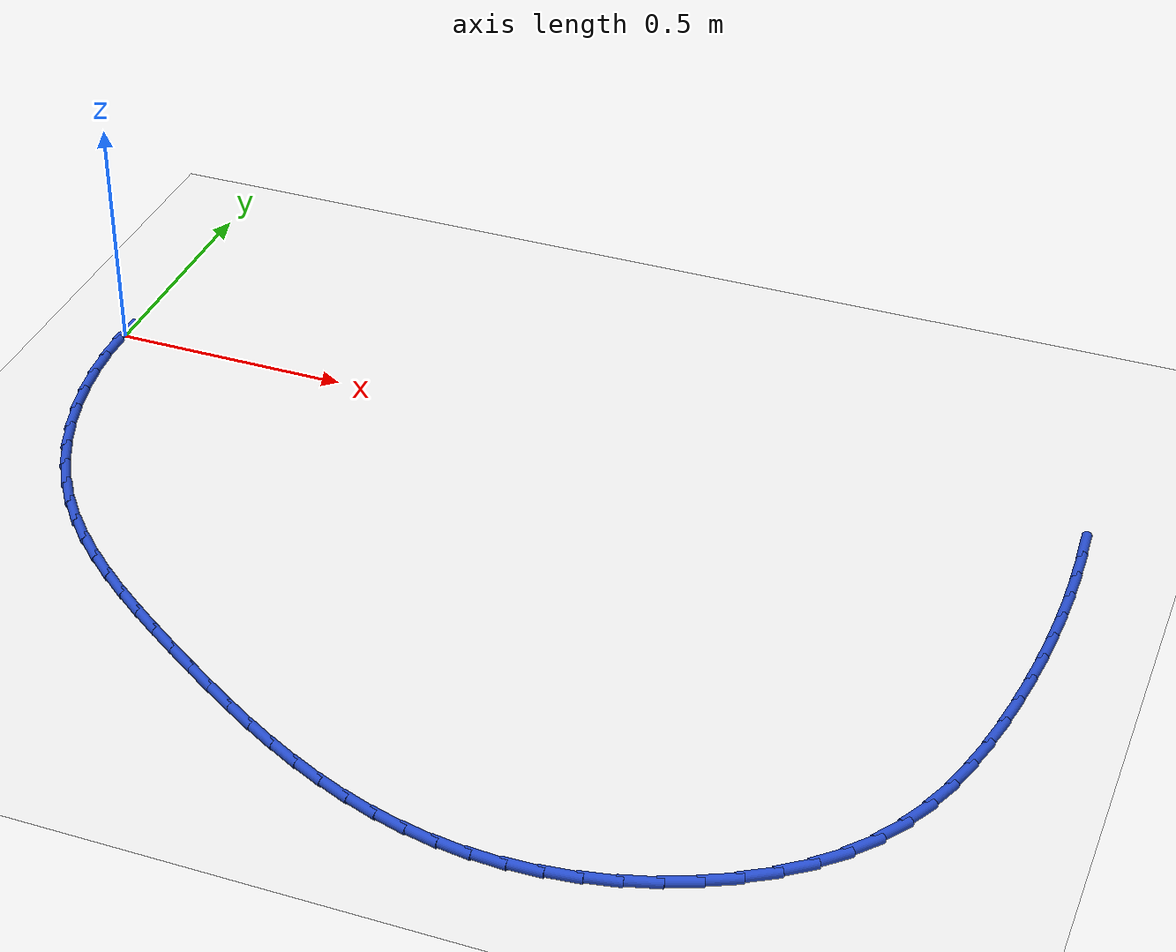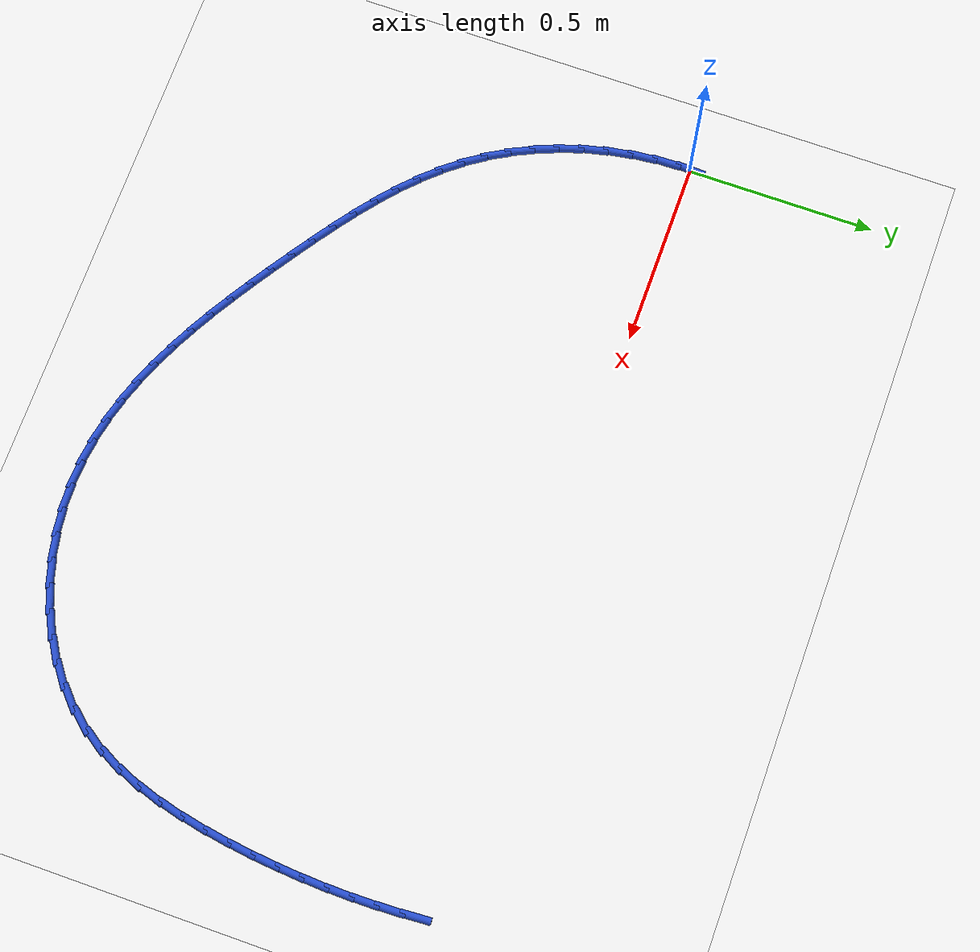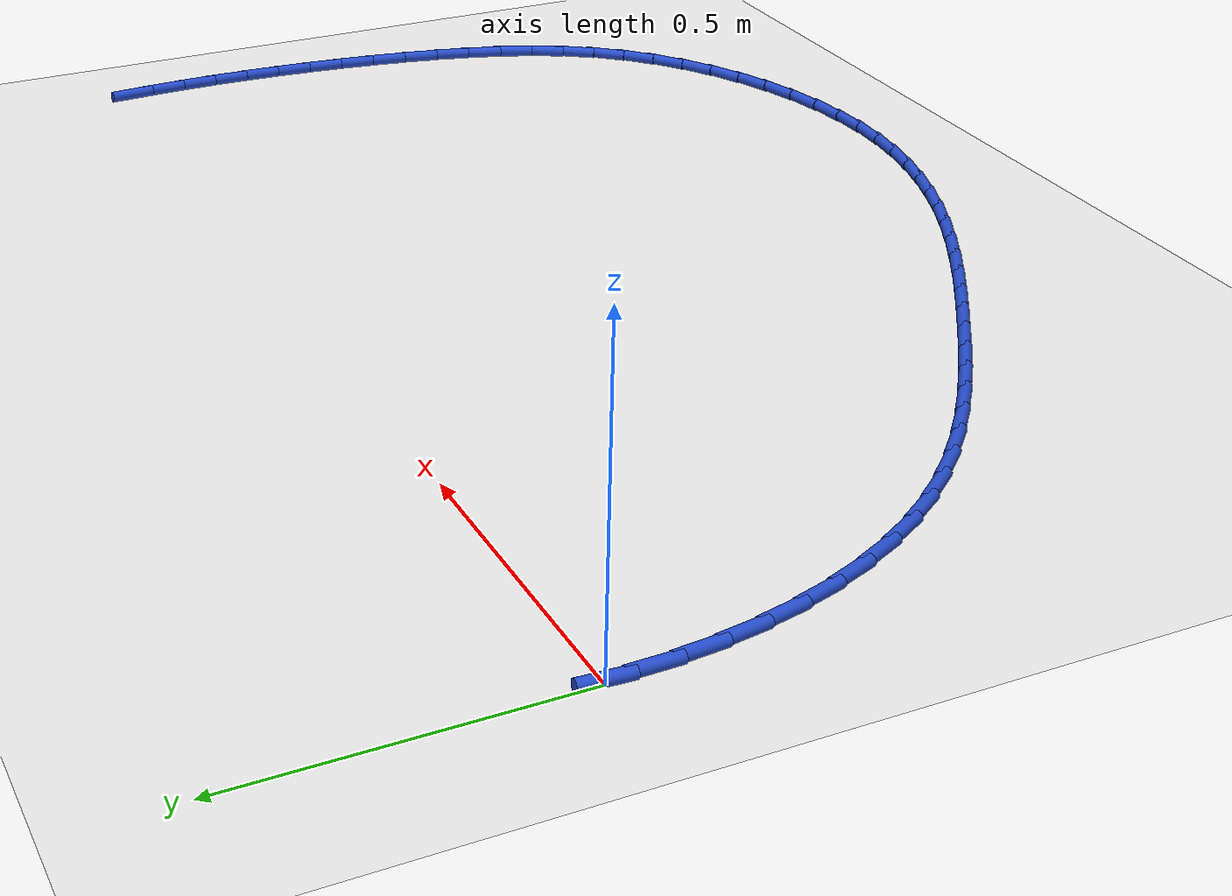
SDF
<sdf version="1.6">
 <world name="default">
  <model name="ground_plane">
   <static>1</static>
   <link name="link">
    <collision name="collision">
     <geometry><plane><normal>0 0 1</normal><size>100 100</size></plane></geometry>
     <surface><friction><ode><mu>100</mu><mu2>50</mu2></ode></friction></surface>
    </collision>
    <visual name="visual">
     <cast_shadows>0</cast_shadows>
     <geometry><plane><normal>0 0 1</normal><size>100 100</size></plane></geometry>
     <material>
      <script><uri>file://media/materials/scripts/gazebo.material</uri><name>Gazebo/WhiteGlow</name></script>
     </material>
    </visual>
   </link>
  </model>
  <model name="line">
   <link name="link_0">
    <pose>5.204170427930421e-17 9.71445146547012e-17 0.01 0 1.57 1.5208950356106852</pose>
    <collision name="collision">
     <geometry><cylinder><radius>0.01</radius><length>0.08</length></cylinder></geometry>
    </collision>
    <visual name="visual">
     <material>
      <script><name>Gazebo/Blue</name><uri>file://media/materials/scripts/gazebo.material</uri></script>
     </material>
     <geometry><cylinder><radius>0.01</radius><length>0.08</length></cylinder></geometry>
    </visual>
   </link>
   <link name="link_55">
    <pose>2.0816488202524788 -0.015220725173674725 0.01 0 1.57 -1.5101368842835152</pose>
    <collision name="collision">
     <geometry><cylinder><radius>0.01</radius><length>0.08</length></cylinder></geometry>
    </collision>
    <visual name="visual">
     <material>
      <script><name>Gazebo/Blue</name><uri>file://media/materials/scripts/gazebo.material</uri></script>
     </material>
     <geometry><cylinder><radius>0.01</radius><length>0.08</length></cylinder></geometry>
    </visual>
   </link>
   <link name="link_56">
    <pose>2.0855438862087197 -0.07935397856693627 0.01 0 1.57 -1.5394694546921008</pose>
    <collision name="collision">
     <geometry><cylinder><radius>0.01</radius><length>0.08</length></cylinder></geometry>
    </collision>
    <visual name="visual">
     <material>
      <script><name>Gazebo/Blue</name><uri>file://media/materials/scripts/gazebo.material</uri></script>
     </material>
     <geometry><cylinder><radius>0.01</radius><length>0.08</length></cylinder></geometry>
    </visual>
   </link>
   <link name="link_57">
    <pose>2.087562389656337 -0.14376650900578747 0.01 0 1.57 -1.5686212378386521</pose>
    <collision name="collision">
     <geometry><cylinder><radius>0.01</radius><length>0.08</length></cylinder></geometry>
    </collision>
    <visual name="visual">
     <material>
      <script><name>Gazebo/Blue</name><uri>file://media/materials/scripts/gazebo.material</uri></script>
     </material>
     <geometry><cylinder><radius>0.01</radius><length>0.08</length></cylinder></geometry>
    </visual>
   </link>
   <link name="link_58">
    <pose>2.0877030223593205 -0.20842247666229008 0.01 0 1.57 1.5439996170005028</pose>
    <collision name="collision">
     <geometry><cylinder><radius>0.01</radius><length>0.08</length></cylinder></geometry>
    </collision>
    <visual name="visual">
     <material>
      <script><name>Gazebo/Blue</name><uri>file://media/materials/scripts/gazebo.material</uri></script>
     </material>
     <geometry><cylinder><radius>0.01</radius><length>0.08</length></cylinder></geometry>
    </visual>
   </link>
   <link name="link_59">
    <pose>2.08596447608166 -0.2732860417085088 0.01 0 1.57 1.5152064612364988</pose>
    <collision name="collision">
     <geometry><cylinder><radius>0.01</radius><length>0.08</length></cylinder></geometry>
    </collision>
    <visual name="visual">
     <material>
      <script><name>Gazebo/Blue</name><uri>file://media/materials/scripts/gazebo.material</uri></script>
     </material>
     <geometry><cylinder><radius>0.01</radius><length>0.08</length></cylinder></geometry>
    </visual>
   </link>
   <link name="link_60">
    <pose>2.082345442587344 -0.33832136431650517 0.01 0 1.57 1.48659014586099</pose>
    <collision name="collision">
     <geometry><cylinder><radius>0.01</radius><length>0.08</length></cylinder></geometry>
    </collision>
    <visual name="visual">
     <material>
      <script><name>Gazebo/Blue</name><uri>file://media/materials/scripts/gazebo.material</uri></script>
     </material>
     <geometry><cylinder><radius>0.01</radius><length>0.08</length></cylinder></geometry>
    </visual>
   </link>
   <link name="link_61">
    <pose>2.0768446136403638 -0.40349260465834436 0.01 0 1.57 1.4581484826261615</pose>
    <collision name="collision">
     <geometry><cylinder><radius>0.01</radius><length>0.08</length></cylinder></geometry>
    </collision>
    <visual name="visual">
     <material>
      <script><name>Gazebo/Blue</name><uri>file://media/materials/scripts/gazebo.material</uri></script>
     </material>
     <geometry><cylinder><radius>0.01</radius><length>0.08</length></cylinder></geometry>
    </visual>
   </link>
   <link name="link_62">
    <pose>2.0694606810047076 -0.46876392290608776 0.01 0 1.57 1.4298776321124267</pose>
    <collision name="collision">
     <geometry><cylinder><radius>0.01</radius><length>0.08</length></cylinder></geometry>
    </collision>
    <visual name="visual">
     <material>
      <script><name>Gazebo/Blue</name><uri>file://media/materials/scripts/gazebo.material</uri></script>
     </material>
     <geometry><cylinder><radius>0.01</radius><length>0.08</length></cylinder></geometry>
    </visual>
   </link>
   <link name="link_63">
    <pose>2.060192257811258 -0.5340994045768019 0.01 0 1.57 1.3994507616390732</pose>
    <collision name="collision">
     <geometry><cylinder><radius>0.01</radius><length>0.08</length></cylinder></geometry>
    </collision>
    <visual name="visual">
     <material>
      <script><name>Gazebo/Blue</name><uri>file://media/materials/scripts/gazebo.material</uri></script>
     </material>
     <geometry><cylinder><radius>0.01</radius><length>0.08</length></cylinder></geometry>
    </visual>
   </link>
   <link name="link_64">
    <pose>2.048903631864892 -0.5993356054809035 0.01 0 1.57 1.3594880709356443</pose>
    <collision name="collision">
     <geometry><cylinder><radius>0.01</radius><length>0.08</length></cylinder></geometry>
    </collision>
    <visual name="visual">
     <material>
      <script><name>Gazebo/Blue</name><uri>file://media/materials/scripts/gazebo.material</uri></script>
     </material>
     <geometry><cylinder><radius>0.01</radius><length>0.08</length></cylinder></geometry>
    </visual>
   </link>
   <link name="link_65">
    <pose>2.0350495453526554 -0.6639202550320885 0.01 0 1.57 1.3078253154363078</pose>
    <collision name="collision">
     <geometry><cylinder><radius>0.01</radius><length>0.08</length></cylinder></geometry>
    </collision>
    <visual name="visual">
     <material>
      <script><name>Gazebo/Blue</name><uri>file://media/materials/scripts/gazebo.material</uri></script>
     </material>
     <geometry><cylinder><radius>0.01</radius><length>0.08</length></cylinder></geometry>
    </visual>
   </link>
   <link name="link_66">
    <pose>2.018006966656782 -0.7272272434745742 0.01 0 1.57 1.2433934933358017</pose>
    <collision name="collision">
     <geometry><cylinder><radius>0.01</radius><length>0.08</length></cylinder></geometry>
    </collision>
    <visual name="visual">
     <material>
      <script><name>Gazebo/Blue</name><uri>file://media/materials/scripts/gazebo.material</uri></script>
     </material>
     <geometry><cylinder><radius>0.01</radius><length>0.08</length></cylinder></geometry>
    </visual>
   </link>
   <link name="link_67">
    <pose>1.997152864159507 -0.788630461052576 0.01 0 1.57 1.1650836154721007</pose>
    <collision name="collision">
     <geometry><cylinder><radius>0.01</radius><length>0.08</length></cylinder></geometry>
    </collision>
    <visual name="visual">
     <material>
      <script><name>Gazebo/Blue</name><uri>file://media/materials/scripts/gazebo.material</uri></script>
     </material>
     <geometry><cylinder><radius>0.01</radius><length>0.08</length></cylinder></geometry>
    </visual>
   </link>
   <link name="link_68">
    <pose>1.9718642062430654 -0.8475037980103112 0.01 0 1.57 1.0720727556856995</pose>
    <collision name="collision">
     <geometry><cylinder><radius>0.01</radius><length>0.08</length></cylinder></geometry>
    </collision>
    <visual name="visual">
     <material>
      <script><name>Gazebo/Blue</name><uri>file://media/materials/scripts/gazebo.material</uri></script>
     </material>
     <geometry><cylinder><radius>0.01</radius><length>0.08</length></cylinder></geometry>
    </visual>
   </link>
   <link name="link_69">
    <pose>1.941517961289692 -0.9032211445919953 0.01 0 1.57 0.9643190950408816</pose>
    <collision name="collision">
     <geometry><cylinder><radius>0.01</radius><length>0.08</length></cylinder></geometry>
    </collision>
    <visual name="visual">
     <material>
      <script><name>Gazebo/Blue</name><uri>file://media/materials/scripts/gazebo.material</uri></script>
     </material>
     <geometry><cylinder><radius>0.01</radius><length>0.08</length></cylinder></geometry>
    </visual>
   </link>
   <link name="link_70">
    <pose>1.9054910976816215 -0.9551563910418464 0.01 0 1.57 0.8453978310898306</pose>
    <collision name="collision">
     <geometry><cylinder><radius>0.01</radius><length>0.08</length></cylinder></geometry>
    </collision>
    <visual name="visual">
     <material>
      <script><name>Gazebo/Blue</name><uri>file://media/materials/scripts/gazebo.material</uri></script>
     </material>
     <geometry><cylinder><radius>0.01</radius><length>0.08</length></cylinder></geometry>
    </visual>
   </link>
   <link name="link_71">
    <pose>1.863305237323063 -1.0027345339904825 0.01 0 1.57 0.7311206717765012</pose>
    <collision name="collision">
     <geometry><cylinder><radius>0.01</radius><length>0.08</length></cylinder></geometry>
    </collision>
    <visual name="visual">
     <material>
      <script><name>Gazebo/Blue</name><uri>file://media/materials/scripts/gazebo.material</uri></script>
     </material>
     <geometry><cylinder><radius>0.01</radius><length>0.08</length></cylinder></geometry>
    </visual>
   </link>
   <link name="link_72">
    <pose>1.8153981196389575 -1.0457042362701234 0.01 0 1.57 0.6264674265452219</pose>
    <collision name="collision">
     <geometry><cylinder><radius>0.01</radius><length>0.08</length></cylinder></geometry>
    </collision>
    <visual name="visual">
     <material>
      <script><name>Gazebo/Blue</name><uri>file://media/materials/scripts/gazebo.material</uri></script>
     </material>
     <geometry><cylinder><radius>0.01</radius><length>0.08</length></cylinder></geometry>
    </visual>
   </link>
   <link name="link_73">
    <pose>1.762565045273888 -1.0839404878262449 0.01 0 1.57 0.5300331884172826</pose>
    <collision name="collision">
     <geometry><cylinder><radius>0.01</radius><length>0.08</length></cylinder></geometry>
    </collision>
    <visual name="visual">
     <material>
      <script><name>Gazebo/Blue</name><uri>file://media/materials/scripts/gazebo.material</uri></script>
     </material>
     <geometry><cylinder><radius>0.01</radius><length>0.08</length></cylinder></geometry>
    </visual>
   </link>
   <link name="link_74">
    <pose>1.7056021320756767 -1.1173185673239094 0.01 0 1.57 0.44011816907898693</pose>
    <collision name="collision">
     <geometry><cylinder><radius>0.01</radius><length>0.08</length></cylinder></geometry>
    </collision>
    <visual name="visual">
     <material>
      <script><name>Gazebo/Blue</name><uri>file://media/materials/scripts/gazebo.material</uri></script>
     </material>
     <geometry><cylinder><radius>0.01</radius><length>0.08</length></cylinder></geometry>
    </visual>
   </link>
   <link name="link_75">
    <pose>1.6453054978921482 -1.145713753428177 0.01 0 1.57 0.3549244007963715</pose>
    <collision name="collision">
     <geometry><cylinder><radius>0.01</radius><length>0.08</length></cylinder></geometry>
    </collision>
    <visual name="visual">
     <material>
      <script><name>Gazebo/Blue</name><uri>file://media/materials/scripts/gazebo.material</uri></script>
     </material>
     <geometry><cylinder><radius>0.01</radius><length>0.08</length></cylinder></geometry>
    </visual>
   </link>
   <link name="link_76">
    <pose>1.5824712605711242 -1.1690013248041082 0.01 0 1.57 0.27263578087046275</pose>
    <collision name="collision">
     <geometry><cylinder><radius>0.01</radius><length>0.08</length></cylinder></geometry>
    </collision>
    <visual name="visual">
     <material>
      <script><name>Gazebo/Blue</name><uri>file://media/materials/scripts/gazebo.material</uri></script>
     </material>
     <geometry><cylinder><radius>0.01</radius><length>0.08</length></cylinder></geometry>
    </visual>
   </link>
   <link name="link_77">
    <pose>1.5178955379604298 -1.1870565601167642 0.01 0 1.57 0.1914297803903629</pose>
    <collision name="collision">
     <geometry><cylinder><radius>0.01</radius><length>0.08</length></cylinder></geometry>
    </collision>
    <visual name="visual">
     <material>
      <script><name>Gazebo/Blue</name><uri>file://media/materials/scripts/gazebo.material</uri></script>
     </material>
     <geometry><cylinder><radius>0.01</radius><length>0.08</length></cylinder></geometry>
    </visual>
   </link>
   <link name="link_78">
    <pose>1.4523744479078864 -1.1997547380312057 0.01 0 1.57 0.10944911867399092</pose>
    <collision name="collision">
     <geometry><cylinder><radius>0.01</radius><length>0.08</length></cylinder></geometry>
    </collision>
    <visual name="visual">
     <material>
      <script><name>Gazebo/Blue</name><uri>file://media/materials/scripts/gazebo.material</uri></script>
     </material>
     <geometry><cylinder><radius>0.01</radius><length>0.08</length></cylinder></geometry>
    </visual>
   </link>
   <link name="link_79">
    <pose>1.3867041082613192 -1.2069711372124932 0.01 0 1.57 0.02495329615455991</pose>
    <collision name="collision">
     <geometry><cylinder><radius>0.01</radius><length>0.08</length></cylinder></geometry>
    </collision>
    <visual name="visual">
     <material>
      <script><name>Gazebo/Blue</name><uri>file://media/materials/scripts/gazebo.material</uri></script>
     </material>
     <geometry><cylinder><radius>0.01</radius><length>0.08</length></cylinder></geometry>
    </visual>
   </link>
   <link name="link_80">
    <pose>1.321659845202949 -1.2085945429327822 0.01 0 1.57 -0.05939845809994278</pose>
    <collision name="collision">
     <geometry><cylinder><radius>0.01</radius><length>0.08</length></cylinder></geometry>
    </collision>
    <visual name="visual">
     <material>
      <script><name>Gazebo/Blue</name><uri>file://media/materials/scripts/gazebo.material</uri></script>
     </material>
     <geometry><cylinder><radius>0.01</radius><length>0.08</length></cylinder></geometry>
    </visual>
   </link>
   <link name="link_81">
    <pose>1.2575994571866378 -1.2047849733267622 0.01 0 1.57 -0.13904663643183146</pose>
    <collision name="collision">
     <geometry><cylinder><radius>0.01</radius><length>0.08</length></cylinder></geometry>
    </collision>
    <visual name="visual">
     <material>
      <script><name>Gazebo/Blue</name><uri>file://media/materials/scripts/gazebo.material</uri></script>
     </material>
     <geometry><cylinder><radius>0.01</radius><length>0.08</length></cylinder></geometry>
    </visual>
   </link>
   <link name="link_82">
    <pose>1.194494378954918 -1.1959534347349001 0.01 0 1.57 -0.21272239350099098</pose>
    <collision name="collision">
     <geometry><cylinder><radius>0.01</radius><length>0.08</length></cylinder></geometry>
    </collision>
    <visual name="visual">
     <material>
      <script><name>Gazebo/Blue</name><uri>file://media/materials/scripts/gazebo.material</uri></script>
     </material>
     <geometry><cylinder><radius>0.01</radius><length>0.08</length></cylinder></geometry>
    </visual>
   </link>
   <link name="link_83">
    <pose>1.1323014981476116 -1.1825203835342495 0.01 0 1.57 -0.2797015264424298</pose>
    <collision name="collision">
     <geometry><cylinder><radius>0.01</radius><length>0.08</length></cylinder></geometry>
    </collision>
    <visual name="visual">
     <material>
      <script><name>Gazebo/Blue</name><uri>file://media/materials/scripts/gazebo.material</uri></script>
     </material>
     <geometry><cylinder><radius>0.01</radius><length>0.08</length></cylinder></geometry>
    </visual>
   </link>
   <link name="link_84">
    <pose>1.0709777024045426 -1.1649062761018656 0.01 0 1.57 -0.3396237996455506</pose>
    <collision name="collision">
     <geometry><cylinder><radius>0.01</radius><length>0.08</length></cylinder></geometry>
    </collision>
    <visual name="visual">
     <material>
      <script><name>Gazebo/Blue</name><uri>file://media/materials/scripts/gazebo.material</uri></script>
     </material>
     <geometry><cylinder><radius>0.01</radius><length>0.08</length></cylinder></geometry>
    </visual>
   </link>
   <link name="link_85">
    <pose>1.0104798793655327 -1.1435315688148024 0.01 0 1.57 -0.3924146494319933</pose>
    <collision name="collision">
     <geometry><cylinder><radius>0.01</radius><length>0.08</length></cylinder></geometry>
    </collision>
    <visual name="visual">
     <material>
      <script><name>Gazebo/Blue</name><uri>file://media/materials/scripts/gazebo.material</uri></script>
     </material>
     <geometry><cylinder><radius>0.01</radius><length>0.08</length></cylinder></geometry>
    </visual>
   </link>
   <link name="link_86">
    <pose>0.9507649166704055 -1.118816718050115 0.01 0 1.57 -0.4381962264169241</pose>
    <collision name="collision">
     <geometry><cylinder><radius>0.01</radius><length>0.08</length></cylinder></geometry>
    </collision>
    <visual name="visual">
     <material>
      <script><name>Gazebo/Blue</name><uri>file://media/materials/scripts/gazebo.material</uri></script>
     </material>
     <geometry><cylinder><radius>0.01</radius><length>0.08</length></cylinder></geometry>
    </visual>
   </link>
   <link name="link_87">
    <pose>0.891789701958983 -1.0911821801848571 0.01 0 1.57 -0.47720561331829947</pose>
    <collision name="collision">
     <geometry><cylinder><radius>0.01</radius><length>0.08</length></cylinder></geometry>
    </collision>
    <visual name="visual">
     <material>
      <script><name>Gazebo/Blue</name><uri>file://media/materials/scripts/gazebo.material</uri></script>
     </material>
     <geometry><cylinder><radius>0.01</radius><length>0.08</length></cylinder></geometry>
    </visual>
   </link>
   <link name="link_88">
    <pose>0.833511122871089 -1.0610484115960839 0.01 0 1.57 -0.5097285384693562</pose>
    <collision name="collision">
     <geometry><cylinder><radius>0.01</radius><length>0.08</length></cylinder></geometry>
    </collision>
    <visual name="visual">
     <material>
      <script><name>Gazebo/Blue</name><uri>file://media/materials/scripts/gazebo.material</uri></script>
     </material>
     <geometry><cylinder><radius>0.01</radius><length>0.08</length></cylinder></geometry>
    </visual>
   </link>
   <link name="link_89">
    <pose>0.7758860670465448 -1.0288358686608494 0.01 0 1.57 -0.536050010995693</pose>
    <collision name="collision">
     <geometry><cylinder><radius>0.01</radius><length>0.08</length></cylinder></geometry>
    </collision>
    <visual name="visual">
     <material>
      <script><name>Gazebo/Blue</name><uri>file://media/materials/scripts/gazebo.material</uri></script>
     </material>
     <geometry><cylinder><radius>0.01</radius><length>0.08</length></cylinder></geometry>
    </visual>
   </link>
   <link name="link_90">
    <pose>0.7188714221251753 -0.9949650077562091 0.01 0 1.57 -0.5564195976568871</pose>
    <collision name="collision">
     <geometry><cylinder><radius>0.01</radius><length>0.08</length></cylinder></geometry>
    </collision>
    <visual name="visual">
     <material>
      <script><name>Gazebo/Blue</name><uri>file://media/materials/scripts/gazebo.material</uri></script>
     </material>
     <geometry><cylinder><radius>0.01</radius><length>0.08</length></cylinder></geometry>
    </visual>
   </link>
   <link name="link_91">
    <pose>0.6624240757468007 -0.9598562852592156 0.01 0 1.57 -0.5710277389361428</pose>
    <collision name="collision">
     <geometry><cylinder><radius>0.01</radius><length>0.08</length></cylinder></geometry>
    </collision>
    <visual name="visual">
     <material>
      <script><name>Gazebo/Blue</name><uri>file://media/materials/scripts/gazebo.material</uri></script>
     </material>
     <geometry><cylinder><radius>0.01</radius><length>0.08</length></cylinder></geometry>
    </visual>
   </link>
   <link name="link_92">
    <pose>0.6065009155512461 -0.9239301575469256 0.01 0 1.57 -0.580485274531685</pose>
    <collision name="collision">
     <geometry><cylinder><radius>0.01</radius><length>0.08</length></cylinder></geometry>
    </collision>
    <visual name="visual">
     <material>
      <script><name>Gazebo/Blue</name><uri>file://media/materials/scripts/gazebo.material</uri></script>
     </material>
     <geometry><cylinder><radius>0.01</radius><length>0.08</length></cylinder></geometry>
    </visual>
   </link>
   <link name="link_93">
    <pose>0.5510749688939215 -0.8875783716891588 0.01 0 1.57 -0.5921159011505723</pose>
    <collision name="collision">
     <geometry><cylinder><radius>0.01</radius><length>0.08</length></cylinder></geometry>
    </collision>
    <visual name="visual">
     <material>
      <script><name>Gazebo/Blue</name><uri>file://media/materials/scripts/gazebo.material</uri></script>
     </material>
     <geometry><cylinder><radius>0.01</radius><length>0.08</length></cylinder></geometry>
    </visual>
   </link>
   <link name="link_94">
    <pose>0.49635539346244884 -0.8507726463966984 0.01 0 1.57 -0.6115888109209193</pose>
    <collision name="collision">
     <geometry><cylinder><radius>0.01</radius><length>0.08</length></cylinder></geometry>
    </collision>
    <visual name="visual">
     <material>
      <script><name>Gazebo/Blue</name><uri>file://media/materials/scripts/gazebo.material</uri></script>
     </material>
     <geometry><cylinder><radius>0.01</radius><length>0.08</length></cylinder></geometry>
    </visual>
   </link>
   <link name="link_95">
    <pose>0.44273041380292105 -0.8131661764616896 0.01 0 1.57 -0.6392979119451336</pose>
    <collision name="collision">
     <geometry><cylinder><radius>0.01</radius><length>0.08</length></cylinder></geometry>
    </collision>
    <visual name="visual">
     <material>
      <script><name>Gazebo/Blue</name><uri>file://media/materials/scripts/gazebo.material</uri></script>
     </material>
     <geometry><cylinder><radius>0.01</radius><length>0.08</length></cylinder></geometry>
    </visual>
   </link>
   <link name="link_96">
    <pose>0.3905927070171732 -0.7744042364753333 0.01 0 1.57 -0.6755403312808885</pose>
    <collision name="collision">
     <geometry><cylinder><radius>0.01</radius><length>0.08</length></cylinder></geometry>
    </collision>
    <visual name="visual">
     <material>
      <script><name>Gazebo/Blue</name><uri>file://media/materials/scripts/gazebo.material</uri></script>
     </material>
     <geometry><cylinder><radius>0.01</radius><length>0.08</length></cylinder></geometry>
    </visual>
   </link>
   <link name="link_97">
    <pose>0.3403349502070384 -0.7341321010288284 0.01 0 1.57 -0.7205985170617649</pose>
    <collision name="collision">
     <geometry><cylinder><radius>0.01</radius><length>0.08</length></cylinder></geometry>
    </collision>
    <visual name="visual">
     <material>
      <script><name>Gazebo/Blue</name><uri>file://media/materials/scripts/gazebo.material</uri></script>
     </material>
     <geometry><cylinder><radius>0.01</radius><length>0.08</length></cylinder></geometry>
    </visual>
   </link>
   <link name="link_98">
    <pose>0.2923498204743498 -0.691995044713374 0.01 0 1.57 -0.7746586092287993</pose>
    <collision name="collision">
     <geometry><cylinder><radius>0.01</radius><length>0.08</length></cylinder></geometry>
    </collision>
    <visual name="visual">
     <material>
      <script><name>Gazebo/Blue</name><uri>file://media/materials/scripts/gazebo.material</uri></script>
     </material>
     <geometry><cylinder><radius>0.01</radius><length>0.08</length></cylinder></geometry>
    </visual>
   </link>
   <link name="link_99">
    <pose>0.24702999492094257 -0.6476383421201714 0.01 0 1.57 -0.8377002042049749</pose>
    <collision name="collision">
     <geometry><cylinder><radius>0.01</radius><length>0.08</length></cylinder></geometry>
    </collision>
    <visual name="visual">
     <material>
      <script><name>Gazebo/Blue</name><uri>file://media/materials/scripts/gazebo.material</uri></script>
     </material>
     <geometry><cylinder><radius>0.01</radius><length>0.08</length></cylinder></geometry>
    </visual>
   </link>
   <link name="link_100">
    <pose>0.20476815064864914 -0.6007072678404185 0.01 0 1.57 -0.9093652267026551</pose>
    <collision name="collision">
     <geometry><cylinder><radius>0.01</radius><length>0.08</length></cylinder></geometry>
    </collision>
    <visual name="visual">
     <material>
      <script><name>Gazebo/Blue</name><uri>file://media/materials/scripts/gazebo.material</uri></script>
     </material>
     <geometry><cylinder><radius>0.01</radius><length>0.08</length></cylinder></geometry>
    </visual>
   </link>
   <link name="link_101">
    <pose>0.16595696475930444 -0.5508470964653165 0.01 0 1.57 -0.9878846871028609</pose>
    <collision name="collision">
     <geometry><cylinder><radius>0.01</radius><length>0.08</length></cylinder></geometry>
    </collision>
    <visual name="visual">
     <material>
      <script><name>Gazebo/Blue</name><uri>file://media/materials/scripts/gazebo.material</uri></script>
     </material>
     <geometry><cylinder><radius>0.01</radius><length>0.08</length></cylinder></geometry>
    </visual>
   </link>
   <link name="link_102">
    <pose>0.13096125150273472 -0.4977700395608556 0.01 0 1.57 -1.0656409930202402</pose>
    <collision name="collision">
     <geometry><cylinder><radius>0.01</radius><length>0.08</length></cylinder></geometry>
    </collision>
    <visual name="visual">
     <material>
      <script><name>Gazebo/Blue</name><uri>file://media/materials/scripts/gazebo.material</uri></script>
     </material>
     <geometry><cylinder><radius>0.01</radius><length>0.08</length></cylinder></geometry>
    </visual>
   </link>
   <link name="link_103">
    <pose>0.09994177491163671 -0.44167851350900633 0.01 0 1.57 -1.1399695693450784</pose>
    <collision name="collision">
     <geometry><cylinder><radius>0.01</radius><length>0.08</length></cylinder></geometry>
    </collision>
    <visual name="visual">
     <material>
      <script><name>Gazebo/Blue</name><uri>file://media/materials/scripts/gazebo.material</uri></script>
     </material>
     <geometry><cylinder><radius>0.01</radius><length>0.08</length></cylinder></geometry>
    </visual>
   </link>
   <link name="link_104">
    <pose>0.07296857117111023 -0.38299289686036087 0.01 0 1.57 -1.2115153466515112</pose>
    <collision name="collision">
     <geometry><cylinder><radius>0.01</radius><length>0.08</length></cylinder></geometry>
    </collision>
    <visual name="visual">
     <material>
      <script><name>Gazebo/Blue</name><uri>file://media/materials/scripts/gazebo.material</uri></script>
     </material>
     <geometry><cylinder><radius>0.01</radius><length>0.08</length></cylinder></geometry>
    </visual>
   </link>
   <link name="link_105">
    <pose>0.05011126387776376 -0.3221345593571386 0.01 0 1.57 -1.2809685785210965</pose>
    <collision name="collision">
     <geometry><cylinder><radius>0.01</radius><length>0.08</length></cylinder></geometry>
    </collision>
    <visual name="visual">
     <material>
      <script><name>Gazebo/Blue</name><uri>file://media/materials/scripts/gazebo.material</uri></script>
     </material>
     <geometry><cylinder><radius>0.01</radius><length>0.08</length></cylinder></geometry>
    </visual>
   </link>
   <link name="link_106">
    <pose>0.031439476628204586 -0.25952487074155633 0.01 0 1.57 -1.3490321028986494</pose>
    <collision name="collision">
     <geometry><cylinder><radius>0.01</radius><length>0.08</length></cylinder></geometry>
    </collision>
    <visual name="visual">
     <material>
      <script><name>Gazebo/Blue</name><uri>file://media/materials/scripts/gazebo.material</uri></script>
     </material>
     <geometry><cylinder><radius>0.01</radius><length>0.08</length></cylinder></geometry>
    </visual>
   </link>
   <link name="link_107">
    <pose>0.01702283301904096 -0.1955852007558337 0.01 0 1.57 -1.4164118173260993</pose>
    <collision name="collision">
     <geometry><cylinder><radius>0.01</radius><length>0.08</length></cylinder></geometry>
    </collision>
    <visual name="visual">
     <material>
      <script><name>Gazebo/Blue</name><uri>file://media/materials/scripts/gazebo.material</uri></script>
     </material>
     <geometry><cylinder><radius>0.01</radius><length>0.08</length></cylinder></geometry>
    </visual>
   </link>
   <link name="link_108">
    <pose>0.0069309566468803326 -0.13073691914218744 0.01 0 1.57 -1.4838128805062165</pose>
    <collision name="collision">
     <geometry><cylinder><radius>0.01</radius><length>0.08</length></cylinder></geometry>
    </collision>
    <visual name="visual">
     <material>
      <script><name>Gazebo/Blue</name><uri>file://media/materials/scripts/gazebo.material</uri></script>
     </material>
     <geometry><cylinder><radius>0.01</radius><length>0.08</length></cylinder></geometry>
    </visual>
   </link>
   <link name="link_109">
    <pose>0.0012334711083308095 -0.0654013956428373 0.01 0 1.57 -1.5519385504610286</pose>
    <collision name="collision">
     <geometry><cylinder><radius>0.01</radius><length>0.08</length></cylinder></geometry>
    </collision>
    <visual name="visual">
     <material>
      <script><name>Gazebo/Blue</name><uri>file://media/materials/scripts/gazebo.material</uri></script>
     </material>
     <geometry><cylinder><radius>0.01</radius><length>0.08</length></cylinder></geometry>
    </visual>
   </link>
  </model>
 </world>
</sdf>
